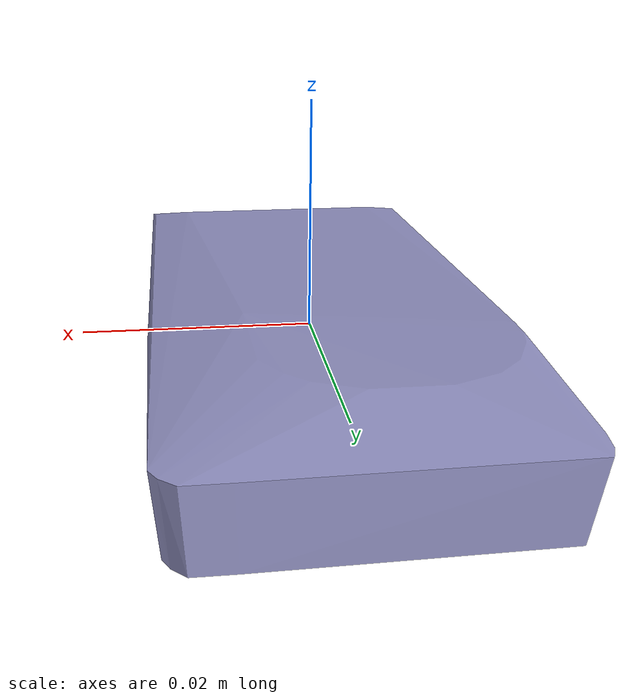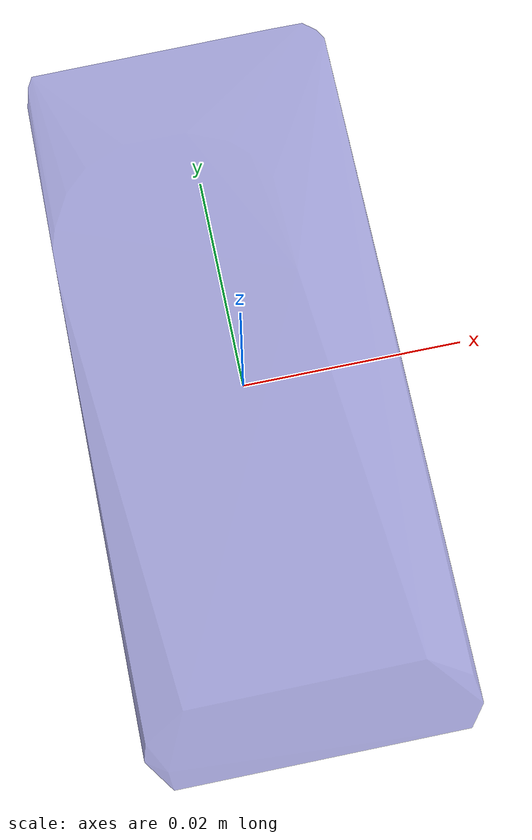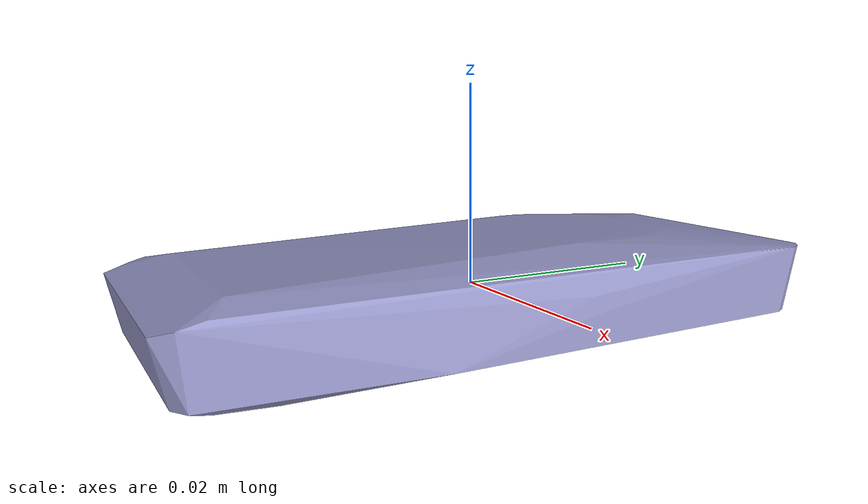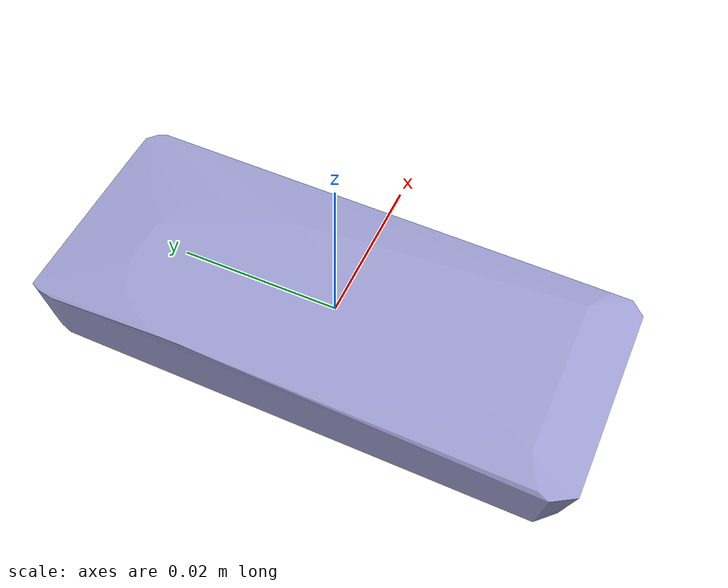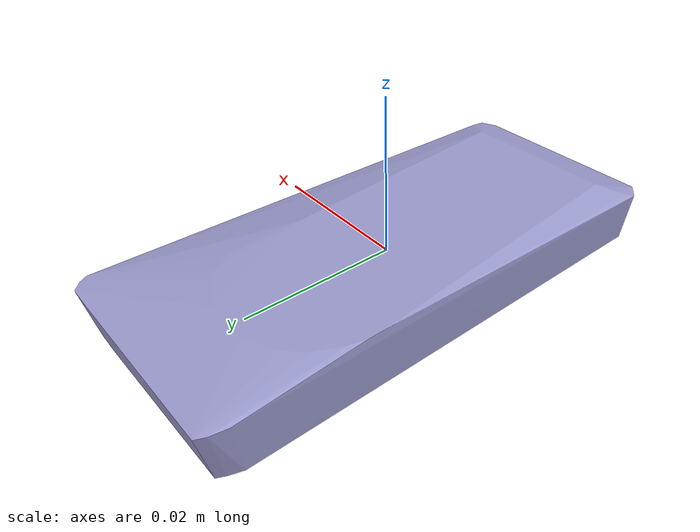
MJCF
<mujoco model="shapenet0-3">
  <asset>
    <mesh file="meshes/shapenet0-3/shapenet0-3_0.stl" name="shapenet0-3_0" scale="0.08 0.08 0.08"/>
  </asset>
  <worldbody>
    <body>
      <body name="collision">
        <geom pos="0 0 0" mesh="shapenet0-3_0" type="mesh" solimp="0.998 0.998 0.001" solref="0.001 1" density="100" friction="0.95 0.3 0.1" rgba="0.6 0.6 0.8 0.9" group="1" condim="4"/>
      </body>
      <body name="visual">
        <geom pos="0 0 0" mesh="shapenet0-3_0" type="mesh" rgba="0 1 0 1" conaffinity="0" contype="0" group="0" mass="0.0001"/>
      </body>
      <site rgba="0 0 0 0" size="0.005" pos="0 0 -0.06" name="bottom_site"/>
      <site rgba="0 0 0 0" size="0.005" pos="0 0 0.04" name="top_site"/>
      <site rgba="0 0 0 0" size="0.005" pos="0.025 0.025 0" name="horizontal_radius_site"/>
    </body>
  </worldbody>
</mujoco>
